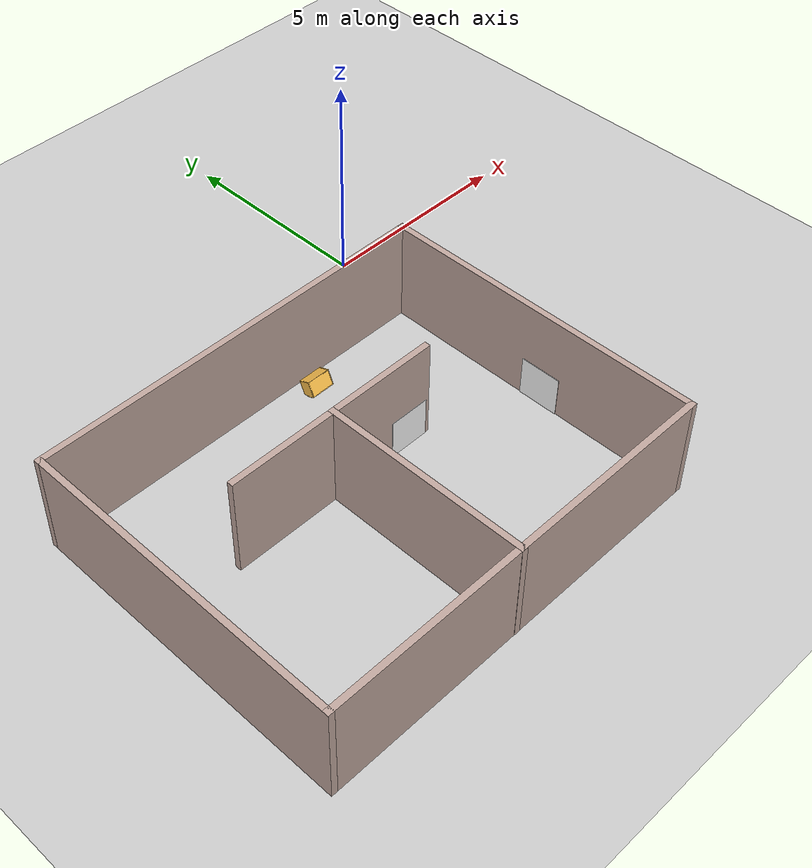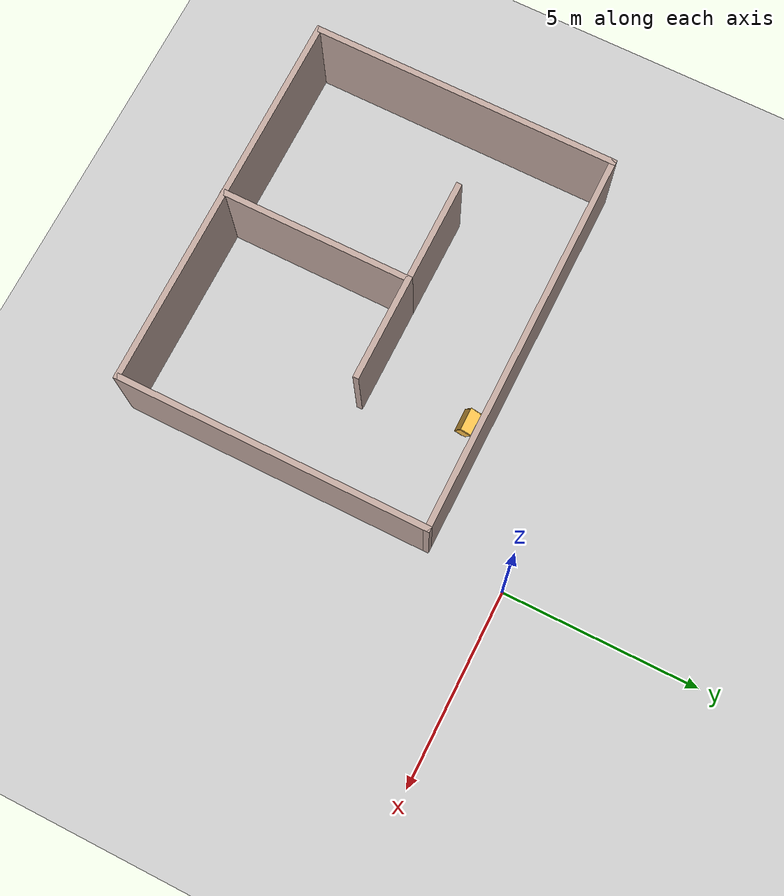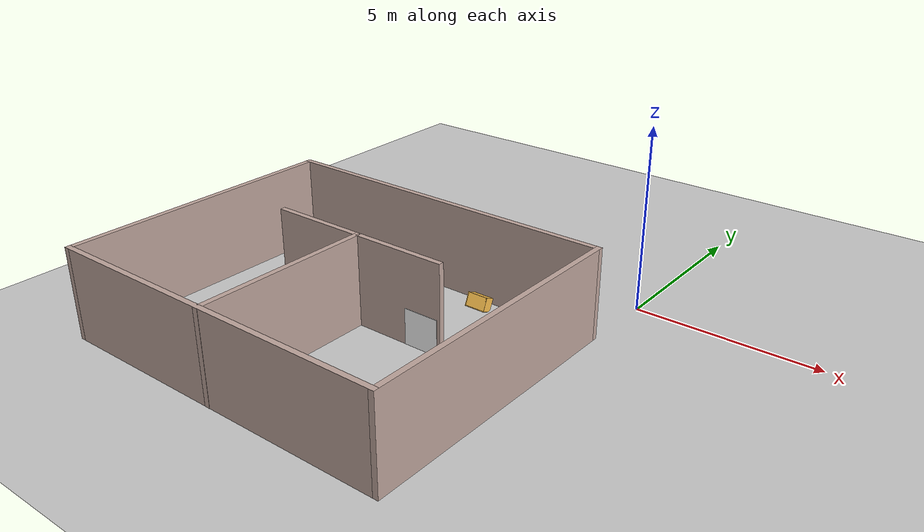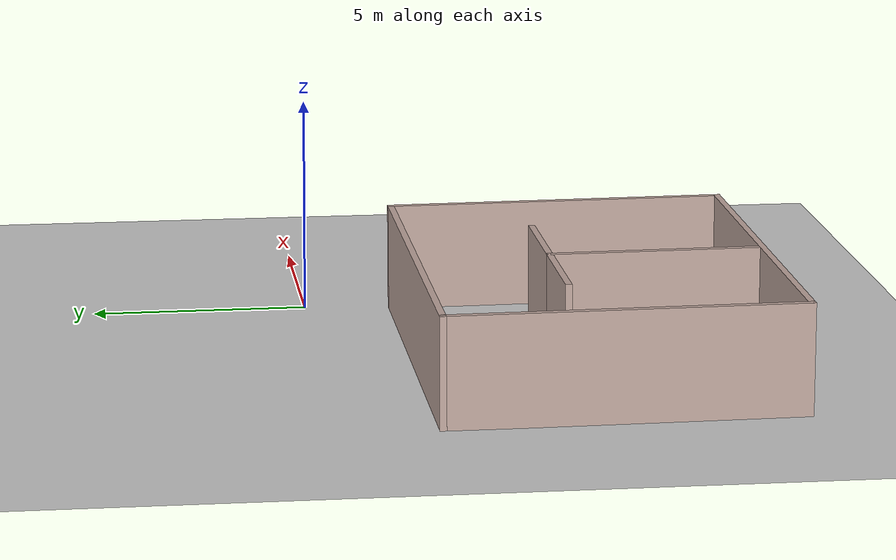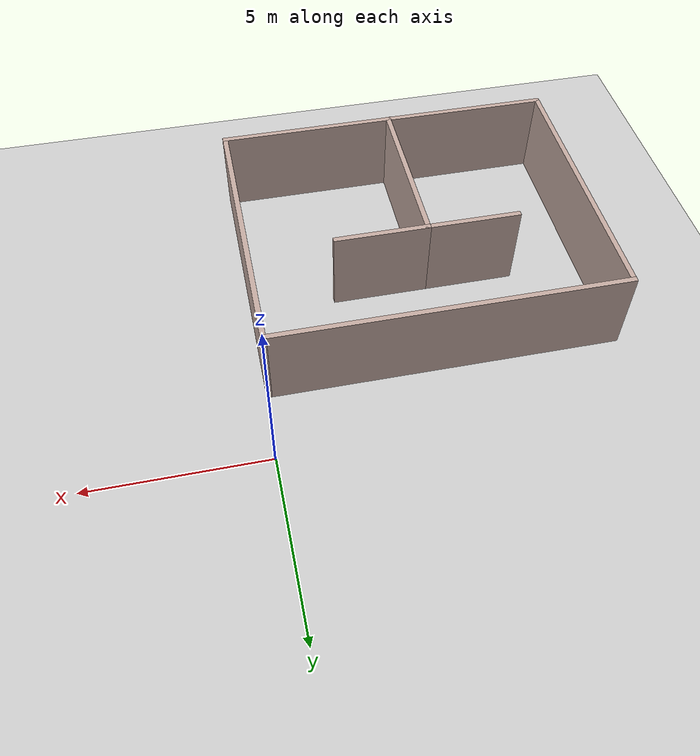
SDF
<sdf version="1.6">
 <world name="default">
  <model name="ground_plane">
   <static>1</static>
   <link name="link">
    <collision name="collision">
     <geometry><plane><normal>0 0 1</normal><size>100 100</size></plane></geometry>
     <surface><friction><ode><mu>100</mu><mu2>50</mu2></ode></friction></surface>
    </collision>
    <visual name="visual">
     <cast_shadows>0</cast_shadows>
     <geometry><plane><normal>0 0 1</normal><size>100 100</size></plane></geometry>
     <material>
      <script><uri>file://media/materials/scripts/gazebo.material</uri><name>Gazebo/Grey</name></script>
     </material>
    </visual>
   </link>
  </model>
  <model name="empty_room_colored_walls">
   <pose>-5.06103 -5.97507 -2e-06 -0.005795 0 0</pose>
   <link name="Wall_62">
    <collision name="Wall_62_Collision">
     <geometry><box><size>10 0.15 2.5</size></box></geometry>
     <pose>0 0 1.25 0 -0 0</pose>
    </collision>
    <visual name="Wall_62_Visual">
     <pose>0 0 1.25 0 -0 0</pose>
     <geometry><box><size>10 0.15 2.5</size></box></geometry>
     <material>
      <script><uri>file://media/materials/scripts/gazebo.material</uri><name>Gazebo/Grey</name></script>
      <ambient>0.760784 0.662745 0.627451 1</ambient>
     </material>
    </visual>
    <pose>0 -3.92179 0 0 -0 0</pose>
   </link>
   <link name="Wall_63">
    <collision name="Wall_63_Collision">
     <geometry><box><size>8 0.15 2.5</size></box></geometry>
     <pose>0 0 1.25 0 -0 0</pose>
    </collision>
    <visual name="Wall_63_Visual">
     <pose>0 0 1.25 0 -0 0</pose>
     <geometry><box><size>8 0.15 2.5</size></box></geometry>
     <material>
      <script><uri>file://media/materials/scripts/gazebo.material</uri><name>Gazebo/Grey</name></script>
      <ambient>0.760784 0.662745 0.627451 1</ambient>
     </material>
    </visual>
    <pose>4.925 0.003206 0 0 -0 1.5708</pose>
   </link>
   <link name="Wall_64">
    <collision name="Wall_64_Collision">
     <geometry><box><size>10 0.15 2.5</size></box></geometry>
     <pose>0 0 1.25 0 -0 0</pose>
    </collision>
    <visual name="Wall_64_Visual">
     <pose>0 0 1.25 0 -0 0</pose>
     <geometry><box><size>10 0.15 2.5</size></box></geometry>
     <material>
      <script><uri>file://media/materials/scripts/gazebo.material</uri><name>Gazebo/Grey</name></script>
      <ambient>0.760784 0.662745 0.627451 1</ambient>
     </material>
    </visual>
    <pose>0 3.92821 0 0 -0 3.14159</pose>
   </link>
   <link name="Wall_65">
    <collision name="Wall_65_Collision">
     <geometry><box><size>8 0.15 2.5</size></box></geometry>
     <pose>0 0 1.25 0 -0 0</pose>
    </collision>
    <visual name="Wall_65_Visual">
     <pose>0 0 1.25 0 -0 0</pose>
     <geometry><box><size>8 0.15 2.5</size></box></geometry>
     <material>
      <script><uri>file://media/materials/scripts/gazebo.material</uri><name>Gazebo/Grey</name></script>
      <ambient>0.760784 0.662745 0.627451 1</ambient>
     </material>
    </visual>
    <pose>-4.925 0.003206 0 0 0 -1.5708</pose>
   </link>
   <link name="Wall_70">
    <collision name="Wall_70_Collision">
     <geometry><box><size>5 0.15 2.5</size></box></geometry>
     <pose>0 0 1.25 0 -0 0</pose>
    </collision>
    <visual name="Wall_70_Visual">
     <pose>0 0 1.25 0 -0 0</pose>
     <geometry><box><size>5 0.15 2.5</size></box></geometry>
     <material>
      <script><uri>file://media/materials/scripts/gazebo.material</uri><name>Gazebo/Grey</name></script>
      <ambient>0.760784 0.662745 0.627451 1</ambient>
     </material>
    </visual>
    <pose>-0.121943 -1.50321 0 0 -0 1.5708</pose>
   </link>
   <link name="Wall_71">
    <collision name="Wall_71_Collision">
     <geometry><box><size>2.75 0.15 2.5</size></box></geometry>
     <pose>0 0 1.25 0 -0 0</pose>
    </collision>
    <visual name="Wall_71_Visual">
     <pose>0 0 1.25 0 -0 0</pose>
     <geometry><box><size>2.75 0.15 2.5</size></box></geometry>
     <material>
      <script><uri>file://media/materials/scripts/gazebo.material</uri><name>Gazebo/Grey</name></script>
      <ambient>0.760784 0.662745 0.627451 1</ambient>
     </material>
    </visual>
    <pose>1.17806 0.921794 0 0 -0 0</pose>
   </link>
   <link name="Wall_73">
    <collision name="Wall_73_Collision">
     <geometry><box><size>2.75 0.15 2.5</size></box></geometry>
     <pose>0 0 1.25 0 -0 0</pose>
    </collision>
    <visual name="Wall_73_Visual">
     <pose>0 0 1.25 0 -0 0</pose>
     <geometry><box><size>2.75 0.15 2.5</size></box></geometry>
     <material>
      <script><uri>file://media/materials/scripts/gazebo.material</uri><name>Gazebo/Grey</name></script>
      <ambient>0.760784 0.662745 0.627451 1</ambient>
     </material>
    </visual>
    <pose>-1.42194 0.921794 0 0 -0 3.14159</pose>
   </link>
   <static>1</static>
  </model>
  <model name="Wall_Cabinet_24x15M">
   <link name="Wall_41">
    <pose>0 0 0.01 0 -0 0</pose>
    <inertial>
     <mass>1.4983</mass>
     <inertia><ixx>0.011</ixx><iyy>0.0571</iyy><izz>0.0462</izz><ixy>0</ixy><ixz>0</ixz><iyz>0</iyz></inertia>
    </inertial>
    <collision name="Wall_41_Collision"><geometry><box><size>0.608 0.296 0.02</size></box></geometry></collision>
    <visual name="Wall_41_Visual">
     <geometry><box><size>0.608 0.296 0.02</size></box></geometry>
     <material>
      <script><uri>file://media/materials/scripts/gazebo.material</uri><name>Gazebo/Grey</name></script>
      <ambient>1 0.764706 0.305882 1</ambient>
     </material>
    </visual>
    <pose>0.000184 0.181953 0 0 -0 0</pose>
   </link>
   <joint name="41_43" type="fixed">
    <pose>-0.304 0 0 0 -0 0</pose>
    <parent>Wall_43</parent>
    <child>Wall_41</child>
    <axis>
     <xyz>0 0 1</xyz>
     <use_parent_model_frame>0</use_parent_model_frame>
     <limit><lower>-1e+16</lower><upper>1e+16</upper></limit>
    </axis>
   </joint>
   <joint name="41_45" type="fixed">
    <pose>0.304 0 0 0 -0 0</pose>
    <parent>Wall_45</parent>
    <child>Wall_41</child>
    <axis>
     <xyz>0 0 1</xyz>
     <use_parent_model_frame>0</use_parent_model_frame>
     <limit><lower>-1e+16</lower><upper>1e+16</upper></limit>
    </axis>
   </joint>
   <joint name="41_49" type="fixed">
    <pose>0 -0.148 0 0 -0 0</pose>
    <parent>Wall_49</parent>
    <child>Wall_41</child>
    <axis>
     <xyz>0 0 1</xyz>
     <use_parent_model_frame>0</use_parent_model_frame>
     <limit><lower>-1e+16</lower><upper>1e+16</upper></limit>
    </axis>
   </joint>
   <link name="Wall_43">
    <pose>-0.294 0 0.192 0 -0 0</pose>
    <inertial>
     <mass>0.9463</mass>
     <inertia><ixx>0.0069</ixx><iyy>0.0185</iyy><izz>0.0117</izz><ixy>0</ixy><ixz>0</ixz><iyz>0</iyz></inertia>
    </inertial>
    <collision name="Wall_43_Collision"><geometry><box><size>0.02 0.296 0.384</size></box></geometry></collision>
    <visual name="Wall_43_Visual">
     <geometry><box><size>0.02 0.296 0.384</size></box></geometry>
     <material>
      <script><uri>file://media/materials/scripts/gazebo.material</uri><name>Gazebo/Grey</name></script>
      <ambient>1 0.764706 0.305882 1</ambient>
     </material>
    </visual>
   </link>
   <link name="Wall_45">
    <pose>0.294 0 0.192 0 -0 0</pose>
    <inertial>
     <mass>0.9463</mass>
     <inertia><ixx>0.0069</ixx><iyy>0.0185</iyy><izz>0.0117</izz><ixy>0</ixy><ixz>0</ixz><iyz>0</iyz></inertia>
    </inertial>
    <collision name="Wall_45_Collision"><geometry><box><size>0.02 0.296 0.384</size></box></geometry></collision>
    <visual name="Wall_45_Visual">
     <geometry><box><size>0.02 0.296 0.384</size></box></geometry>
     <material>
      <script><uri>file://media/materials/scripts/gazebo.material</uri><name>Gazebo/Grey</name></script>
      <ambient>1 0.764706 0.305882 1</ambient>
     </material>
    </visual>
   </link>
   <link name="Wall_47">
    <pose>0 0 0.374 0 -0 0</pose>
    <inertial>
     <mass>1.4983</mass>
     <inertia><ixx>0.011</ixx><iyy>0.0571</iyy><izz>0.0462</izz><ixy>0</ixy><ixz>0</ixz><iyz>0</iyz></inertia>
    </inertial>
    <collision name="Wall_47_Collision"><geometry><box><size>0.608 0.296 0.02</size></box></geometry></collision>
    <visual name="Wall_47_Visual">
     <geometry><box><size>0.608 0.296 0.02</size></box></geometry>
     <material>
      <script><uri>file://media/materials/scripts/gazebo.material</uri><name>Gazebo/Grey</name></script>
      <ambient>1 0.764706 0.305882 1</ambient>
     </material>
    </visual>
   </link>
   <joint name="47_43" type="fixed">
    <pose>-0.304 0 0 0 -0 0</pose>
    <parent>Wall_43</parent>
    <child>Wall_47</child>
    <axis>
     <xyz>0 0 1</xyz>
     <use_parent_model_frame>0</use_parent_model_frame>
     <limit><lower>-1e+16</lower><upper>1e+16</upper></limit>
    </axis>
   </joint>
   <joint name="47_45" type="fixed">
    <pose>0.304 0 0 0 -0 0</pose>
    <parent>Wall_45</parent>
    <child>Wall_47</child>
    <axis>
     <xyz>0 0 1</xyz>
     <use_parent_model_frame>0</use_parent_model_frame>
     <limit><lower>-1e+16</lower><upper>1e+16</upper></limit>
    </axis>
   </joint>
   <joint name="47_49" type="fixed">
    <pose>0 -0.148 0 0 -0 0</pose>
    <parent>Wall_49</parent>
    <child>Wall_47</child>
    <axis>
     <xyz>0 0 1</xyz>
     <use_parent_model_frame>0</use_parent_model_frame>
     <limit><lower>-1e+16</lower><upper>1e+16</upper></limit>
    </axis>
   </joint>
   <link name="Wall_49">
    <pose>0 -0.138 0.19 0 -0 0</pose>
    <inertial>
     <mass>1.9108</mass>
     <inertia><ixx>0.0231</ixx><iyy>0.0582</iyy><izz>0.0811</izz><ixy>0</ixy><ixz>0</ixz><iyz>0</iyz></inertia>
    </inertial>
    <collision name="Wall_49_Collision"><geometry><box><size>0.604 0.02 0.38</size></box></geometry></collision>
    <visual name="Wall_49_Visual">
     <geometry><box><size>0.604 0.02 0.38</size></box></geometry>
     <material>
      <script><uri>file://media/materials/scripts/gazebo.material</uri><name>Gazebo/Grey</name></script>
      <ambient>1 0.764706 0.305882 1</ambient>
     </material>
    </visual>
   </link>
   <joint name="49_43" type="fixed">
    <pose>-0.302 0 0 0 -0 0</pose>
    <parent>Wall_41</parent>
    <child>Wall_49</child>
    <axis>
     <xyz>0 1 0</xyz>
     <use_parent_model_frame>0</use_parent_model_frame>
     <limit><lower>-1e+16</lower><upper>1e+16</upper></limit>
    </axis>
   </joint>
   <joint name="49_45" type="fixed">
    <pose>0.302 0 0 0 -0 0</pose>
    <parent>Wall_45</parent>
    <child>Wall_49</child>
    <axis>
     <xyz>0 1 0</xyz>
     <use_parent_model_frame>0</use_parent_model_frame>
     <limit><lower>-1e+16</lower><upper>1e+16</upper></limit>
    </axis>
   </joint>
   <static>1</static>
   <pose>-3.30759 -2.60525 0 -0.417028 0 0</pose>
  </model>
  <model name="Gas_3">
   <link name="link_0">
    <pose>4e-06 0 0 0 -0 0</pose>
    <inertial>
     <mass>1</mass>
     <inertia>
      <ixx>0.166667</ixx>
      <ixy>0</ixy>
      <ixz>0</ixz>
      <iyy>0.166667</iyy>
      <iyz>0</iyz>
      <izz>0.166667</izz>
     </inertia>
    </inertial>
    <visual name="visual">
     <geometry><box><size>0.01 1 1</size></box></geometry>
     <material>
      <lighting>1</lighting>
      <script>
       <uri>model://gas_3_N/materials/scripts</uri>
       <uri>model://gas_3_N/materials/textures</uri>
       <name>Gas/Gas3N</name>
      </script>
      <ambient>1 1 1 1</ambient>
      <diffuse>1 1 1 1</diffuse>
      <specular>0.01 0.01 0.01 1</specular>
      <emissive>1 1 1 1</emissive>
     </material>
     <cast_shadows>0</cast_shadows>
    </visual>
    <collision name="collision">
     <geometry><box><size>0.01 1 1</size></box></geometry>
     <surface>
      <friction>
       <ode><mu>1</mu><mu2>1</mu2><fdir1>0 0 0</fdir1><slip1>0</slip1><slip2>0</slip2></ode>
       <torsional>
        <coefficient>1</coefficient>
        <patch_radius>0</patch_radius>
        <surface_radius>0</surface_radius>
        <use_patch_radius>1</use_patch_radius>
        <ode><slip>0</slip></ode>
       </torsional>
      </friction>
      <bounce><restitution_coefficient>0</restitution_coefficient><threshold>1e+06</threshold></bounce>
      <contact>
       <collide_without_contact>0</collide_without_contact>
       <collide_without_contact_bitmask>1</collide_without_contact_bitmask>
       <collide_bitmask>1</collide_bitmask>
       <ode>
        <soft_cfm>0</soft_cfm>
        <soft_erp>0.2</soft_erp>
        <kp>1e+13</kp>
        <kd>1</kd>
        <max_vel>0.01</max_vel>
        <min_depth>0</min_depth>
       </ode>
       <bullet>
        <split_impulse>1</split_impulse>
        <split_impulse_penetration_threshold>-0.01</split_impulse_penetration_threshold>
        <soft_cfm>0</soft_cfm>
        <soft_erp>0.2</soft_erp>
        <kp>1e+13</kp>
        <kd>1</kd>
       </bullet>
      </contact>
     </surface>
    </collision>
   </link>
   <static>0</static>
   <pose>-0.218963 -6.25072 0.499999 -2e-06 6e-06 0.003595</pose>
  </model>
  <model name="Gas_1_0">
   <link name="link_0">
    <pose>4e-06 0 0 0 -0 0</pose>
    <inertial>
     <mass>1</mass>
     <inertia>
      <ixx>0.166667</ixx>
      <ixy>0</ixy>
      <ixz>0</ixz>
      <iyy>0.166667</iyy>
      <iyz>0</iyz>
      <izz>0.166667</izz>
     </inertia>
    </inertial>
    <visual name="visual">
     <geometry><box><size>0.01 1 1</size></box></geometry>
     <material>
      <lighting>1</lighting>
      <script>
       <uri>model://gas_1_N/materials/scripts</uri>
       <uri>model://gas_1_N/materials/textures</uri>
       <name>Gas/Gas1N</name>
      </script>
      <ambient>1 1 1 1</ambient>
      <diffuse>1 1 1 1</diffuse>
      <specular>0.01 0.01 0.01 1</specular>
      <emissive>1 1 1 1</emissive>
     </material>
     <cast_shadows>0</cast_shadows>
    </visual>
    <collision name="collision">
     <geometry><box><size>0.01 1 1</size></box></geometry>
     <surface>
      <friction>
       <ode><mu>1</mu><mu2>1</mu2><fdir1>0 0 0</fdir1><slip1>0</slip1><slip2>0</slip2></ode>
       <torsional>
        <coefficient>1</coefficient>
        <patch_radius>0</patch_radius>
        <surface_radius>0</surface_radius>
        <use_patch_radius>1</use_patch_radius>
        <ode><slip>0</slip></ode>
       </torsional>
      </friction>
      <bounce><restitution_coefficient>0</restitution_coefficient><threshold>1e+06</threshold></bounce>
      <contact>
       <collide_without_contact>0</collide_without_contact>
       <collide_without_contact_bitmask>1</collide_without_contact_bitmask>
       <collide_bitmask>1</collide_bitmask>
       <ode>
        <soft_cfm>0</soft_cfm>
        <soft_erp>0.2</soft_erp>
        <kp>1e+13</kp>
        <kd>1</kd>
        <max_vel>0.01</max_vel>
        <min_depth>0</min_depth>
       </ode>
       <bullet>
        <split_impulse>1</split_impulse>
        <split_impulse_penetration_threshold>-0.01</split_impulse_penetration_threshold>
        <soft_cfm>0</soft_cfm>
        <soft_erp>0.2</soft_erp>
        <kp>1e+13</kp>
        <kd>1</kd>
       </bullet>
      </contact>
     </surface>
    </collision>
   </link>
   <static>0</static>
   <pose>-3.09949 -5.13328 0.5 0 -4.9e-05 -1.5708</pose>
  </model>
 </world>
</sdf>
